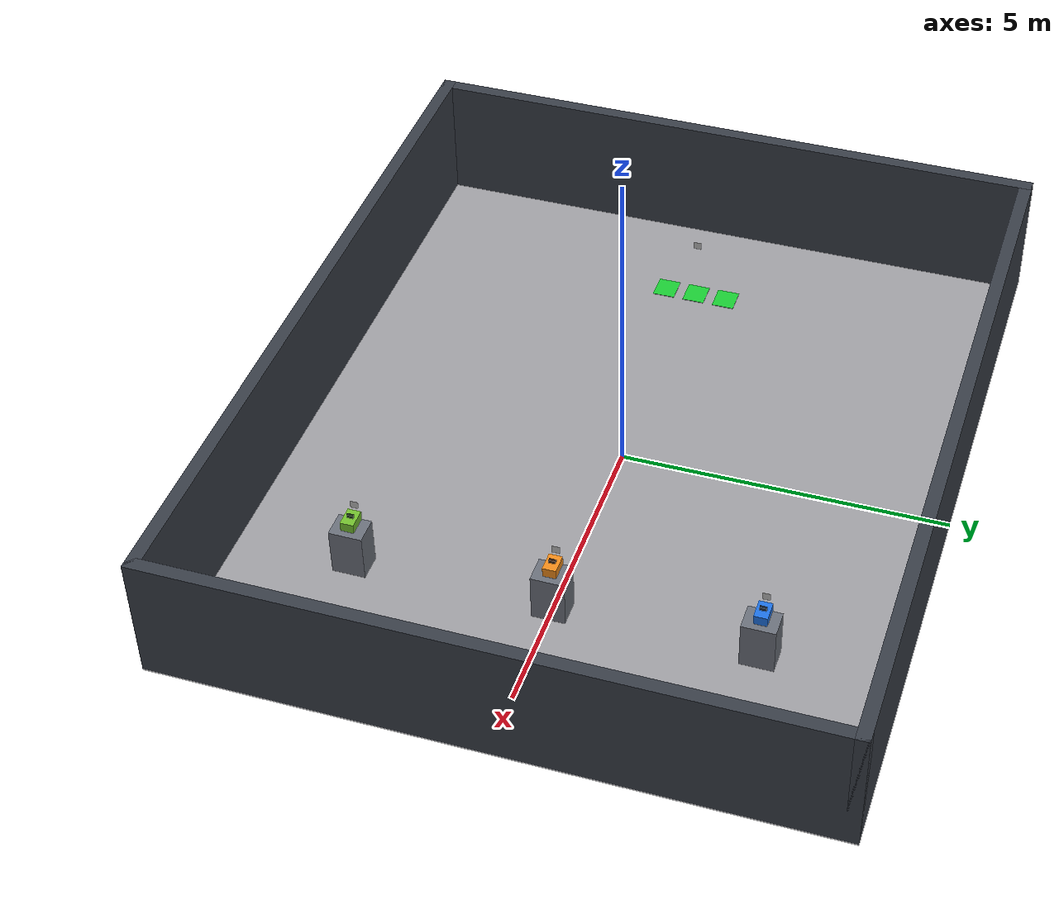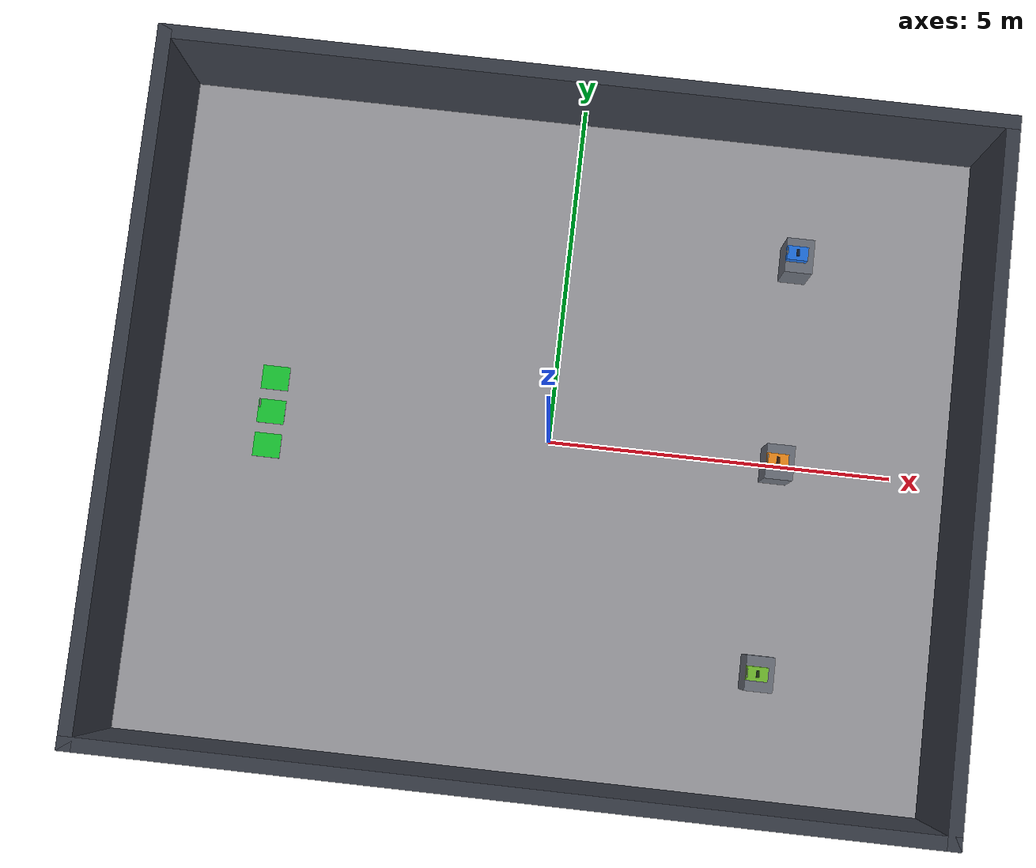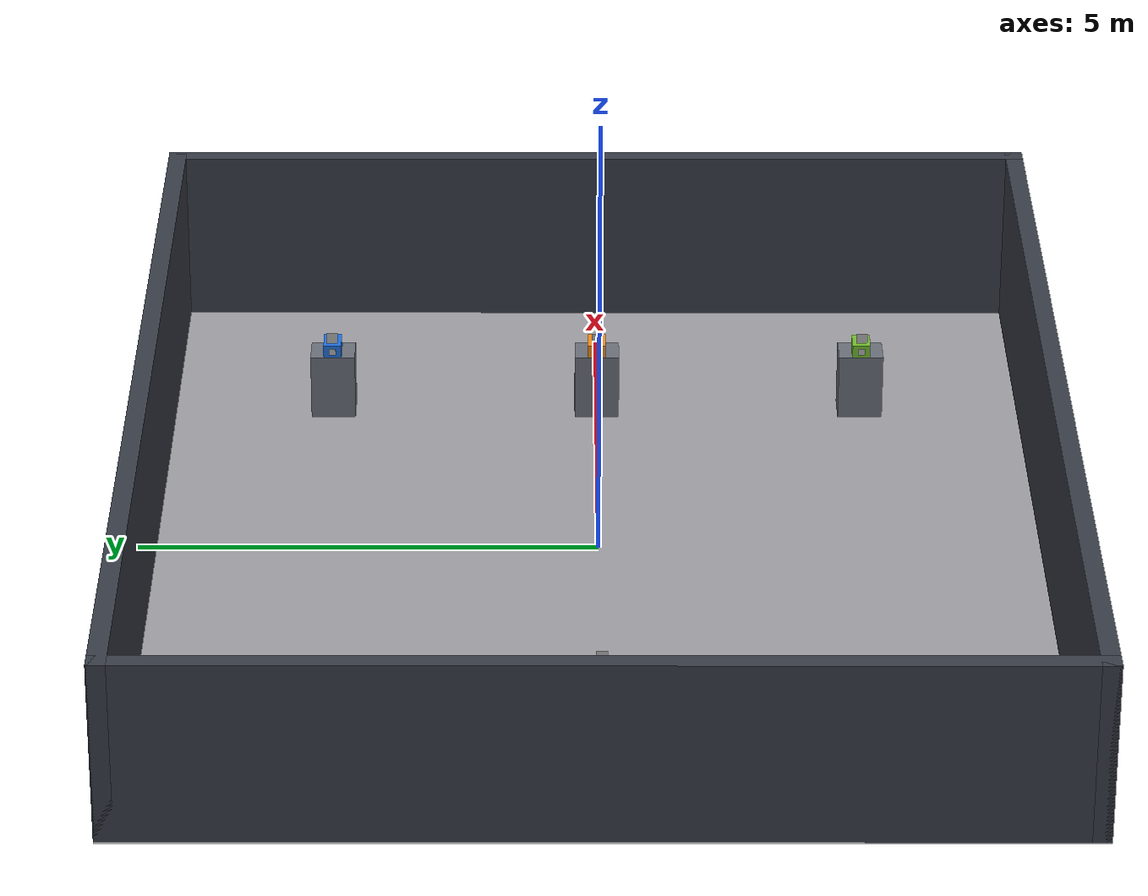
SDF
<sdf version="1.9">
 <world name="factory_world">
  <physics name="3.333333ms" type="dart">
   <max_step_size>0.0033333333333333335</max_step_size>
   <real_time_factor>1.0</real_time_factor>
  </physics>
  <gravity>0 0 -9.81</gravity>
  <scene>
   <ambient>0.8 0.8 0.8 1</ambient>
   <background>0.45 0.48 0.52 1</background>
   <shadows>false</shadows>
  </scene>
  <light name="sun" type="directional">
   <cast_shadows>false</cast_shadows>
   <pose>0 0 10 0 0 0</pose>
   <diffuse>1 1 1 1</diffuse>
   <specular>0.4 0.4 0.4 1</specular>
   <direction>-0.5 0.1 -0.9</direction>
  </light>
  <plugin filename="gz-sim-physics-system" name="gz::sim::systems::Physics"/>
  <plugin filename="gz-sim-user-commands-system" name="gz::sim::systems::UserCommands"/>
  <plugin filename="gz-sim-scene-broadcaster-system" name="gz::sim::systems::SceneBroadcaster"/>
  <plugin filename="gz-sim-contact-system" name="gz::sim::systems::Contact"/>
  <plugin filename="gz-sim-sensors-system" name="gz::sim::systems::Sensors">
   <render_engine>ogre2</render_engine>
  </plugin>
  <plugin filename="gz-sim-imu-system" name="gz::sim::systems::Imu"/>
  <model name="factory_floor">
   <static>true</static>
   <link name="link">
    <collision name="collision">
     <geometry><plane><normal>0 0 1</normal><size>12 10</size></plane></geometry>
    </collision>
    <visual name="visual">
     <geometry><plane><normal>0 0 1</normal><size>12 10</size></plane></geometry>
     <material><ambient>0.55 0.55 0.57 1</ambient><diffuse>0.62 0.62 0.64 1</diffuse></material>
    </visual>
   </link>
  </model>
  <model name="factory_boundary">
   <static>true</static>
   <link name="link">
    <collision name="west">
     <pose>-5.9 0 1 0 0 0</pose>
     <geometry><box><size>0.2 10 2</size></box></geometry>
    </collision>
    <collision name="east">
     <pose>5.9 0 1 0 0 0</pose>
     <geometry><box><size>0.2 10 2</size></box></geometry>
    </collision>
    <collision name="north">
     <pose>0 4.9 1 0 0 0</pose>
     <geometry><box><size>12 0.2 2</size></box></geometry>
    </collision>
    <collision name="south">
     <pose>0 -4.9 1 0 0 0</pose>
     <geometry><box><size>12 0.2 2</size></box></geometry>
    </collision>
    <visual name="west_visual">
     <pose>-5.9 0 1 0 0 0</pose>
     <geometry><box><size>0.2 10 2</size></box></geometry>
     <material><diffuse>0.22 0.24 0.28 1</diffuse></material>
    </visual>
    <visual name="east_visual">
     <pose>5.9 0 1 0 0 0</pose>
     <geometry><box><size>0.2 10 2</size></box></geometry>
     <material><diffuse>0.22 0.24 0.28 1</diffuse></material>
    </visual>
    <visual name="north_visual">
     <pose>0 4.9 1 0 0 0</pose>
     <geometry><box><size>12 0.2 2</size></box></geometry>
     <material><diffuse>0.22 0.24 0.28 1</diffuse></material>
    </visual>
    <visual name="south_visual">
     <pose>0 -4.9 1 0 0 0</pose>
     <geometry><box><size>12 0.2 2</size></box></geometry>
     <material><diffuse>0.22 0.24 0.28 1</diffuse></material>
    </visual>
   </link>
  </model>
  <model name="station_tags">
   <static>true</static>
   <link name="tags">
    <collision name="pickup_a_pedestal">
     <pose>3.30 3.0 0.375 0 0 0</pose>
     <geometry><box><size>0.40 0.50 0.75</size></box></geometry>
    </collision>
    <collision name="pickup_b_pedestal">
     <pose>3.30 0.0 0.375 0 0 0</pose>
     <geometry><box><size>0.40 0.50 0.75</size></box></geometry>
    </collision>
    <collision name="pickup_c_pedestal">
     <pose>3.30 -3.0 0.375 0 0 0</pose>
     <geometry><box><size>0.40 0.50 0.75</size></box></geometry>
    </collision>
    <visual name="pickup_a_pedestal_visual">
     <pose>3.30 3.0 0.375 0 0 0</pose>
     <geometry><box><size>0.40 0.50 0.75</size></box></geometry>
     <material><diffuse>0.42 0.44 0.48 1</diffuse></material>
    </visual>
    <visual name="pickup_b_pedestal_visual">
     <pose>3.30 0.0 0.375 0 0 0</pose>
     <geometry><box><size>0.40 0.50 0.75</size></box></geometry>
     <material><diffuse>0.42 0.44 0.48 1</diffuse></material>
    </visual>
    <visual name="pickup_c_pedestal_visual">
     <pose>3.30 -3.0 0.375 0 0 0</pose>
     <geometry><box><size>0.40 0.50 0.75</size></box></geometry>
     <material><diffuse>0.42 0.44 0.48 1</diffuse></material>
    </visual>
    <visual name="pickup_a_tag">
     <pose>3.094 3.0 1.00 0 -1.5707963267948966 0</pose>
     <geometry>
      <mesh><uri>model://phase14_tags/meshes/tag36h11_10.dae</uri><scale>0.12 0.12 0.12</scale></mesh>
     </geometry>
    </visual>
    <visual name="pickup_b_tag">
     <pose>3.094 0.0 1.00 0 -1.5707963267948966 0</pose>
     <geometry>
      <mesh><uri>model://phase14_tags/meshes/tag36h11_11.dae</uri><scale>0.12 0.12 0.12</scale></mesh>
     </geometry>
    </visual>
    <visual name="pickup_c_tag">
     <pose>3.094 -3.0 1.00 0 -1.5707963267948966 0</pose>
     <geometry>
      <mesh><uri>model://phase14_tags/meshes/tag36h11_12.dae</uri><scale>0.12 0.12 0.12</scale></mesh>
     </geometry>
    </visual>
    <visual name="dispatch_tag">
     <pose>-4.094 0 1.00 0 1.5707963267948966 0</pose>
     <geometry>
      <mesh><uri>model://phase14_tags/meshes/tag36h11_20.dae</uri><scale>0.12 0.12 0.12</scale></mesh>
     </geometry>
    </visual>
   </link>
  </model>
  <model name="product_a">
   <pose>3.25 3.0 0.825 0 0 0</pose>
   <link name="product">
    <inertial>
     <mass>1.0</mass>
     <inertia><ixx>0.0052083333</ixx><iyy>0.009375</iyy><izz>0.0108333333</izz></inertia>
    </inertial>
    <collision name="body"><geometry><box><size>0.30 0.20 0.15</size></box></geometry></collision>
    <collision name="handle">
     <pose>0 0 0.10 0 0 0</pose>
     <geometry><box><size>0.04 0.10 0.05</size></box></geometry>
    </collision>
    <visual name="body_visual">
     <geometry><box><size>0.30 0.20 0.15</size></box></geometry>
     <material><diffuse>0.12 0.45 0.90 1</diffuse></material>
    </visual>
    <visual name="handle_visual">
     <pose>0 0 0.10 0 0 0</pose>
     <geometry><box><size>0.04 0.10 0.05</size></box></geometry>
     <material><diffuse>0.06 0.12 0.20 1</diffuse></material>
    </visual>
    <visual name="tag">
     <pose>-0.156 0 0 0 -1.5707963267948966 0</pose>
     <geometry>
      <mesh><uri>model://phase14_tags/meshes/tag36h11_101.dae</uri><scale>0.072 0.072 0.072</scale></mesh>
     </geometry>
    </visual>
   </link>
   <plugin filename="gz-sim-pose-publisher-system" name="gz::sim::systems::PosePublisher">
    <publish_model_pose>true</publish_model_pose>
    <publish_link_pose>false</publish_link_pose>
    <use_pose_vector_msg>false</use_pose_vector_msg>
    <static_publisher>false</static_publisher>
   </plugin>
  </model>
  <model name="product_b">
   <pose>3.25 0.0 0.825 0 0 0</pose>
   <link name="product">
    <inertial>
     <mass>3.0</mass>
     <inertia><ixx>0.015625</ixx><iyy>0.028125</iyy><izz>0.0325</izz></inertia>
    </inertial>
    <collision name="body"><geometry><box><size>0.30 0.20 0.15</size></box></geometry></collision>
    <collision name="handle">
     <pose>0 0 0.10 0 0 0</pose>
     <geometry><box><size>0.04 0.10 0.05</size></box></geometry>
    </collision>
    <visual name="body_visual">
     <geometry><box><size>0.30 0.20 0.15</size></box></geometry>
     <material><diffuse>0.95 0.55 0.10 1</diffuse></material>
    </visual>
    <visual name="handle_visual">
     <pose>0 0 0.10 0 0 0</pose>
     <geometry><box><size>0.04 0.10 0.05</size></box></geometry>
     <material><diffuse>0.20 0.10 0.03 1</diffuse></material>
    </visual>
    <visual name="tag">
     <pose>-0.156 0 0 0 -1.5707963267948966 0</pose>
     <geometry>
      <mesh><uri>model://phase14_tags/meshes/tag36h11_102.dae</uri><scale>0.072 0.072 0.072</scale></mesh>
     </geometry>
    </visual>
   </link>
   <plugin filename="gz-sim-pose-publisher-system" name="gz::sim::systems::PosePublisher">
    <publish_model_pose>true</publish_model_pose>
    <publish_link_pose>false</publish_link_pose>
    <use_pose_vector_msg>false</use_pose_vector_msg>
    <static_publisher>false</static_publisher>
   </plugin>
  </model>
  <model name="product_c">
   <pose>3.25 -3.0 0.825 0 0 0</pose>
   <link name="product">
    <inertial>
     <mass>5.0</mass>
     <inertia><ixx>0.0260416667</ixx><iyy>0.046875</iyy><izz>0.0541666667</izz></inertia>
    </inertial>
    <collision name="body"><geometry><box><size>0.30 0.20 0.15</size></box></geometry></collision>
    <collision name="handle">
     <pose>0 0 0.10 0 0 0</pose>
     <geometry><box><size>0.04 0.10 0.05</size></box></geometry>
    </collision>
    <visual name="body_visual">
     <geometry><box><size>0.30 0.20 0.15</size></box></geometry>
     <material><diffuse>0.45 0.75 0.18 1</diffuse></material>
    </visual>
    <visual name="handle_visual">
     <pose>0 0 0.10 0 0 0</pose>
     <geometry><box><size>0.04 0.10 0.05</size></box></geometry>
     <material><diffuse>0.08 0.18 0.04 1</diffuse></material>
    </visual>
    <visual name="tag">
     <pose>-0.156 0 0 0 -1.5707963267948966 0</pose>
     <geometry>
      <mesh><uri>model://phase14_tags/meshes/tag36h11_103.dae</uri><scale>0.072 0.072 0.072</scale></mesh>
     </geometry>
    </visual>
   </link>
   <plugin filename="gz-sim-pose-publisher-system" name="gz::sim::systems::PosePublisher">
    <publish_model_pose>true</publish_model_pose>
    <publish_link_pose>false</publish_link_pose>
    <use_pose_vector_msg>false</use_pose_vector_msg>
    <static_publisher>false</static_publisher>
   </plugin>
  </model>
  <model name="dispatch_floor_slots">
   <static>true</static>
   <link name="link">
    <visual name="slot_1">
     <pose>-4.1 0.5 0.006 0 0 0</pose>
     <geometry><box><size>0.40 0.35 0.01</size></box></geometry>
     <material><diffuse>0.1 0.8 0.2 1</diffuse></material>
    </visual>
    <visual name="slot_2">
     <pose>-4.1 0.0 0.006 0 0 0</pose>
     <geometry><box><size>0.40 0.35 0.01</size></box></geometry>
     <material><diffuse>0.1 0.8 0.2 1</diffuse></material>
    </visual>
    <visual name="slot_3">
     <pose>-4.1 -0.5 0.006 0 0 0</pose>
     <geometry><box><size>0.40 0.35 0.01</size></box></geometry>
     <material><diffuse>0.1 0.8 0.2 1</diffuse></material>
    </visual>
   </link>
  </model>
 </world>
</sdf>
